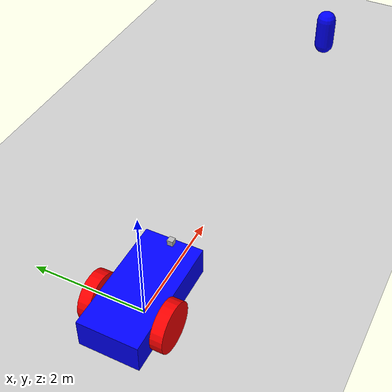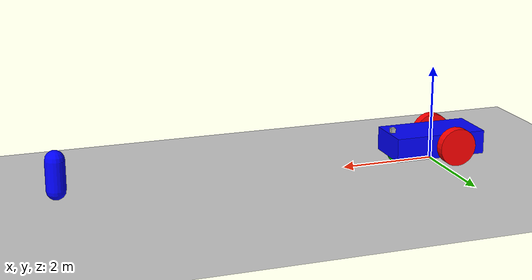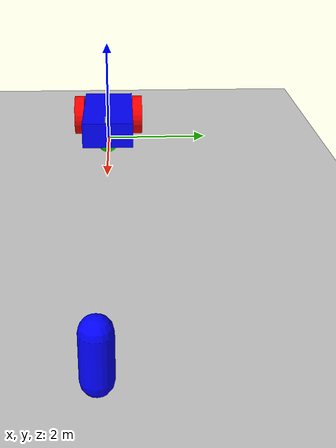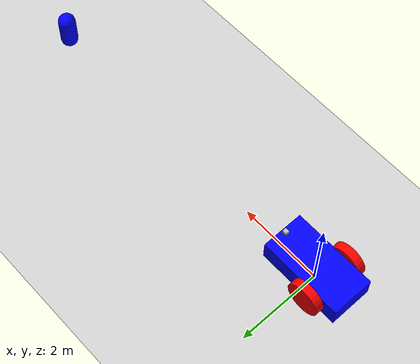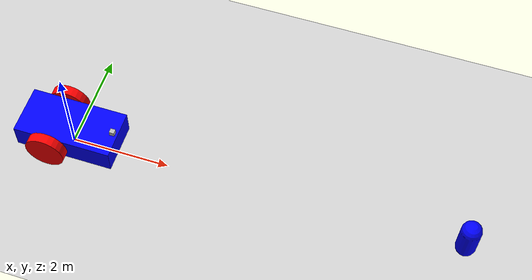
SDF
<sdf version='1.9'>
  <world name='car_world'>
    <physics name='1ms' type='ignored'>
      <max_step_size>0.001</max_step_size>
      <real_time_factor>1</real_time_factor>
      <real_time_update_rate>1000</real_time_update_rate>
    </physics>
    <plugin name='ignition::gazebo::systems::Physics' filename='libignition-gazebo-physics-system.so'/>
    <plugin name='ignition::gazebo::systems::UserCommands' filename='libignition-gazebo-user-commands-system.so'/>
    <plugin name='ignition::gazebo::systems::SceneBroadcaster' filename='libignition-gazebo-scene-broadcaster-system.so'/>
    <plugin name='ignition::gazebo::systems::Sensors' filename='ignition-gazebo-sensors-system'>
      <render_engine>ogre</render_engine>
    </plugin>
    <gravity>0 0 -9.8</gravity>
    <magnetic_field>6e-06 2.3e-05 -4.2e-05</magnetic_field>
    <atmosphere type='adiabatic'/>
    <scene>
      <ambient>0.4 0.4 0.4 1</ambient>
      <background>0.7 0.7 0.7 1</background>
      <shadows>true</shadows>
    </scene>
    <model name='ground_plane'>
      <static>true</static>
      <link name='link'>
        <collision name='collision'>
          <geometry>
            <plane>
              <normal>0 0 1</normal>
              <size>1 1</size>
            </plane>
          </geometry>
          <surface>
            <friction>
              <ode/>
            </friction>
            <bounce/>
            <contact/>
          </surface>
        </collision>
        <visual name='visual'>
          <geometry>
            <plane>
              <normal>0 0 1</normal>
              <size>1000 1000</size>
            </plane>
          </geometry>
          <material>
            <ambient>0.8 0.8 0.8 1</ambient>
            <diffuse>0.8 0.8 0.8 1</diffuse>
            <specular>0.8 0.8 0.8 1</specular>
          </material>
        </visual>
        <pose>0 0 0 0 -0 0</pose>
        <inertial>
          <pose>0 0 0 0 -0 0</pose>
          <mass>1</mass>
          <inertia>
            <ixx>1</ixx>
            <ixy>0</ixy>
            <ixz>0</ixz>
            <iyy>1</iyy>
            <iyz>0</iyz>
            <izz>1</izz>
          </inertia>
        </inertial>
        <enable_wind>false</enable_wind>
      </link>
      <pose>0 0 0 0 -0 0</pose>
      <self_collide>false</self_collide>
    </model>
    <model name='simple_car' canonical_link='chassis'>
      <pose>0 0 0 0 0 -0</pose>
      <link name='chassis'>
        <pose>0 0 0.4 0 -0 0</pose>
        <inertial>
          <mass>1.14395</mass>
          <inertia>
            <ixx>0.0953</ixx>
            <ixy>0</ixy>
            <ixz>0</ixz>
            <iyy>0.3813</iyy>
            <iyz>0</iyz>
            <izz>0.4766</izz>
          </inertia>
          <pose>0 0 0 0 -0 0</pose>
        </inertial>
        <visual name='visual'>
          <geometry>
            <box>
              <size>2 1 0.5</size>
            </box>
          </geometry>
          <material>
            <ambient>0 0 1 1</ambient>
            <diffuse>0 0 1 1</diffuse>
            <specular>0 0 1 1</specular>
          </material>
        </visual>
        <collision name='collision'>
          <geometry>
            <box>
              <size>2 1 0.5</size>
            </box>
          </geometry>
          <surface>
            <friction>
              <ode/>
            </friction>
            <bounce/>
            <contact/>
          </surface>
        </collision>
        <enable_wind>false</enable_wind>
      </link>
      <joint name='camera_joint' type='fixed'>
        <pose>0 0 0 0 -0 0</pose>
        <parent>chassis</parent>
        <child>camera_link</child>
      </joint>
      <link name='camera_link'>
        <pose relative_to="chassis">0.9 0 0.3 0 -0 0</pose>
        <inertial>
          <mass>0.10000000000000001</mass>
          <inertia>
            <ixx>0.00016666700000000001</ixx>
            <iyy>0.00016666700000000001</iyy>
            <izz>0.00016666700000000001</izz>
            <ixy>0</ixy>
            <ixz>0</ixz>
            <iyz>0</iyz>
          </inertia>
          <pose>0 0 0 0 -0 0</pose>
        </inertial>
        <collision name='collision'>
          <geometry>
            <box>
              <size>0.1 0.1 0.1</size>
            </box>
          </geometry>
          <surface>
            <friction>
              <ode/>
            </friction>
            <bounce/>
            <contact/>
          </surface>
        </collision>
        <visual name='visual'>
          <geometry>
            <box>
              <size>0.1 0.1 0.1</size>
            </box>
          </geometry>
        </visual>
        <sensor name='camera' type='camera'>
          <pose>0 0 0 0 -0 0</pose>
          <topic>camera</topic>
          <update_rate>30</update_rate>
          <enable_metrics>false</enable_metrics>
          <camera name='__default__'>
            <pose>0 0 0 0 -0 0</pose>
            <horizontal_fov>1.0469999999999999</horizontal_fov>
            <image>
              <width>320</width>
              <height>240</height>
              <format>RGB_INT8</format>
              <anti_aliasing>4</anti_aliasing>
            </image>
            <clip>
              <near>0.10000000000000001</near>
              <far>100</far>
            </clip>
            <save enabled='false'>
              <path>__default__</path>
            </save>
            <visibility_mask>4294967295</visibility_mask>
            <noise>
              <type>none</type>
              <mean>0</mean>
              <stddev>0</stddev>
            </noise>
            <distortion>
              <k1>0</k1>
              <k2>0</k2>
              <k3>0</k3>
              <p1>0</p1>
              <p2>0</p2>
              <center>0.5 0.5</center>
            </distortion>
            <lens>
              <type>stereographic</type>
              <scale_to_hfov>true</scale_to_hfov>
              <cutoff_angle>1.5708</cutoff_angle>
              <env_texture_size>256</env_texture_size>
            </lens>
          </camera>
        </sensor>
        <enable_wind>false</enable_wind>
      </link>
      <link name='left_wheel'>
        <pose relative_to="chassis">-0.3 0.6 0 -1.5707 -0 0</pose>
        <inertial>
          <mass>1</mass>
          <inertia>
            <ixx>0.043333000000000003</ixx>
            <ixy>0</ixy>
            <ixz>0</ixz>
            <iyy>0.043333000000000003</iyy>
            <iyz>0</iyz>
            <izz>0.080000000000000002</izz>
          </inertia>
          <pose>0 0 0 0 -0 0</pose>
        </inertial>
        <visual name='visual'>
          <geometry>
            <cylinder>
              <radius>0.40000000000000002</radius>
              <length>0.20000000000000001</length>
            </cylinder>
          </geometry>
          <material>
            <ambient>1 0 0 1</ambient>
            <diffuse>1 0 0 1</diffuse>
            <specular>1 0 0 1</specular>
          </material>
        </visual>
        <collision name='collision'>
          <geometry>
            <cylinder>
              <radius>0.40000000000000002</radius>
              <length>0.20000000000000001</length>
            </cylinder>
          </geometry>
          <surface>
            <friction>
              <ode/>
            </friction>
            <bounce/>
            <contact/>
          </surface>
        </collision>
        <enable_wind>false</enable_wind>
      </link>
      <link name='right_wheel'>
        <pose relative_to="chassis">-0.3 -0.6 0 -1.5707 -0 0</pose>
        <inertial>
          <mass>1</mass>
          <inertia>
            <ixx>0.043333000000000003</ixx>
            <ixy>0</ixy>
            <ixz>0</ixz>
            <iyy>0.043333000000000003</iyy>
            <iyz>0</iyz>
            <izz>0.080000000000000002</izz>
          </inertia>
          <pose>0 0 0 0 -0 0</pose>
        </inertial>
        <visual name='visual'>
          <geometry>
            <cylinder>
              <radius>0.40000000000000002</radius>
              <length>0.20000000000000001</length>
            </cylinder>
          </geometry>
          <material>
            <ambient>1 0 0 1</ambient>
            <diffuse>1 0 0 1</diffuse>
            <specular>1 0 0 1</specular>
          </material>
        </visual>
        <collision name='collision'>
          <geometry>
            <cylinder>
              <radius>0.40000000000000002</radius>
              <length>0.20000000000000001</length>
            </cylinder>
          </geometry>
          <surface>
            <friction>
              <ode/>
            </friction>
            <bounce/>
            <contact/>
          </surface>
        </collision>
        <enable_wind>false</enable_wind>
      </link>
      <frame name='caster_frame' attached_to='chassis'>
        <pose relative_to="chassis">0.8 0 -0.2 0 0 0</pose>
      </frame>
      <link name='caster'>
        <pose relative_to="chassis">0.8 0 -0.2 0 0 0</pose>
        <inertial>
          <mass>1</mass>
          <inertia>
            <ixx>0.016</ixx>
            <ixy>0</ixy>
            <ixz>0</ixz>
            <iyy>0.016</iyy>
            <iyz>0</iyz>
            <izz>0.016</izz>
          </inertia>
          <pose>0 0 0 0 -0 0</pose>
        </inertial>
        <visual name='visual'>
          <geometry>
            <sphere>
              <radius>0.20000000000000001</radius>
            </sphere>
          </geometry>
          <material>
            <ambient>0 1 0 1</ambient>
            <diffuse>0 1 0 1</diffuse>
            <specular>0 1 0 1</specular>
          </material>
        </visual>
        <collision name='collision'>
          <geometry>
            <sphere>
              <radius>0.20000000000000001</radius>
            </sphere>
          </geometry>
          <surface>
            <friction>
              <ode/>
            </friction>
            <bounce/>
            <contact/>
          </surface>
        </collision>
        <enable_wind>false</enable_wind>
      </link>
      <joint name='left_wheel_joint' type='revolute'>
        <pose>0 0 0 0 -0 0</pose>
        <parent>chassis</parent>
        <child>left_wheel</child>
        <axis>
          <xyz>0 9.6e-05 1</xyz>
          <limit>
            <lower>-1.7976900000000001e+308</lower>
            <upper>1.7976900000000001e+308</upper>
            <effort>inf</effort>
            <velocity>inf</velocity>
            <stiffness>100000000</stiffness>
            <dissipation>1</dissipation>
          </limit>
          <dynamics>
            <spring_reference>0</spring_reference>
            <spring_stiffness>0</spring_stiffness>
            <damping>0</damping>
            <friction>0</friction>
          </dynamics>
        </axis>
      </joint>
      <joint name='right_wheel_joint' type='revolute'>
        <pose>0 0 0 0 -0 0</pose>
        <parent>chassis</parent>
        <child>right_wheel</child>
        <axis>
          <xyz>0 9.6e-05 1</xyz>
          <limit>
            <lower>-1.7976900000000001e+308</lower>
            <upper>1.7976900000000001e+308</upper>
            <effort>inf</effort>
            <velocity>inf</velocity>
            <stiffness>100000000</stiffness>
            <dissipation>1</dissipation>
          </limit>
          <dynamics>
            <spring_reference>0</spring_reference>
            <spring_stiffness>0</spring_stiffness>
            <damping>0</damping>
            <friction>0</friction>
          </dynamics>
        </axis>
      </joint>
      <joint name='caster_wheel' type='ball'>
        <parent>chassis</parent>
        <child>caster</child>
        <pose>0 0 0 0 -0 0</pose>
      </joint>
      <plugin name='ignition::gazebo::systems::DiffDrive' filename='libignition-gazebo-diff-drive-system.so'>
        <left_joint>left_wheel_joint</left_joint>
        <right_joint>right_wheel_joint</right_joint>
        <wheel_separation>1.2</wheel_separation>
        <wheel_radius>0.4</wheel_radius>
        <odom_publish_frequency>1</odom_publish_frequency>
        <topic>cmd_vel</topic>
      </plugin>
      <plugin name='ignition::gazebo::systems::PosePublisher' filename='libignition-gazebo-pose-publisher-system.so'>
        <publish_link_pose>true</publish_link_pose>
        <publish_sensor_pose>true</publish_sensor_pose>
        <publish_collision_pose>false</publish_collision_pose>
        <publish_visual_pose>false</publish_visual_pose>
        <publish_nested_model_pose>true</publish_nested_model_pose>
      </plugin>
      <static>false</static>
      <self_collide>false</self_collide>
    </model>
    <model name='capsule'>
      <pose>8 0 0.5 0 -0 0</pose>
      <link name='capsule_link'>
        <inertial>
          <inertia>
            <ixx>0.074153999999999998</ixx>
            <ixy>0</ixy>
            <ixz>0</ixz>
            <iyy>0.074153999999999998</iyy>
            <iyz>0</iyz>
            <izz>0.018769000000000001</izz>
          </inertia>
          <mass>1</mass>
          <pose>0 0 0 0 -0 0</pose>
        </inertial>
        <collision name='capsule_collision'>
          <geometry>
            <capsule>
              <radius>0.20000000000000001</radius>
              <length>0.59999999999999998</length>
            </capsule>
          </geometry>
          <surface>
            <friction>
              <ode/>
            </friction>
            <bounce/>
            <contact/>
          </surface>
        </collision>
        <visual name='capsule_visual'>
          <geometry>
            <capsule>
              <radius>0.20000000000000001</radius>
              <length>0.59999999999999998</length>
            </capsule>
          </geometry>
          <material>
            <ambient>0 0 1 1</ambient>
            <diffuse>0 0 1 1</diffuse>
            <specular>0 0 1 1</specular>
          </material>
        </visual>
        <pose>0 0 0 0 -0 0</pose>
        <enable_wind>false</enable_wind>
      </link>
      <static>false</static>
      <self_collide>false</self_collide>
      <plugin name='ignition::gazebo::systems::PosePublisher' filename='libignition-gazebo-pose-publisher-system.so'>
        <publish_link_pose>true</publish_link_pose>
        <publish_sensor_pose>true</publish_sensor_pose>
        <publish_collision_pose>false</publish_collision_pose>
        <publish_visual_pose>false</publish_visual_pose>
        <publish_nested_model_pose>true</publish_nested_model_pose>
      </plugin>
    </model>
    <light name='sun' type='directional'>
      <pose>0 0 10 0 -0 0</pose>
      <cast_shadows>true</cast_shadows>
      <intensity>1</intensity>
      <direction>0.5 -0.1 -0.9</direction>
      <diffuse>0.8 0.8 0.8 1</diffuse>
      <specular>0.2 0.2 0.2 1</specular>
      <attenuation>
        <range>1000</range>
        <linear>0.01</linear>
        <constant>0.90000000000000002</constant>
        <quadratic>0.001</quadratic>
      </attenuation>
      <spot>
        <inner_angle>0</inner_angle>
        <outer_angle>0</outer_angle>
        <falloff>0</falloff>
      </spot>
    </light>
  </world>
</sdf>
